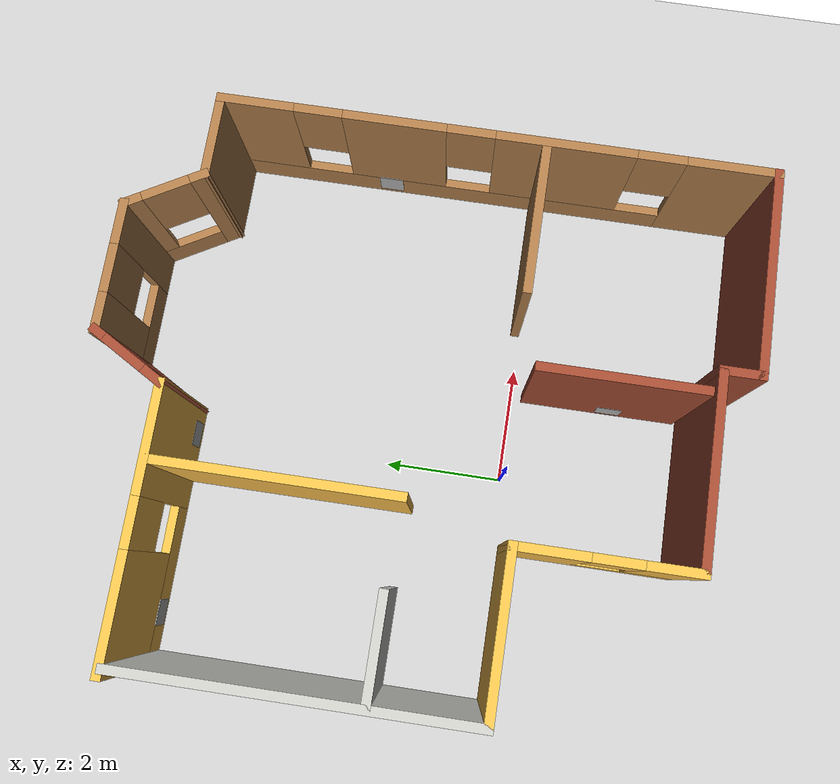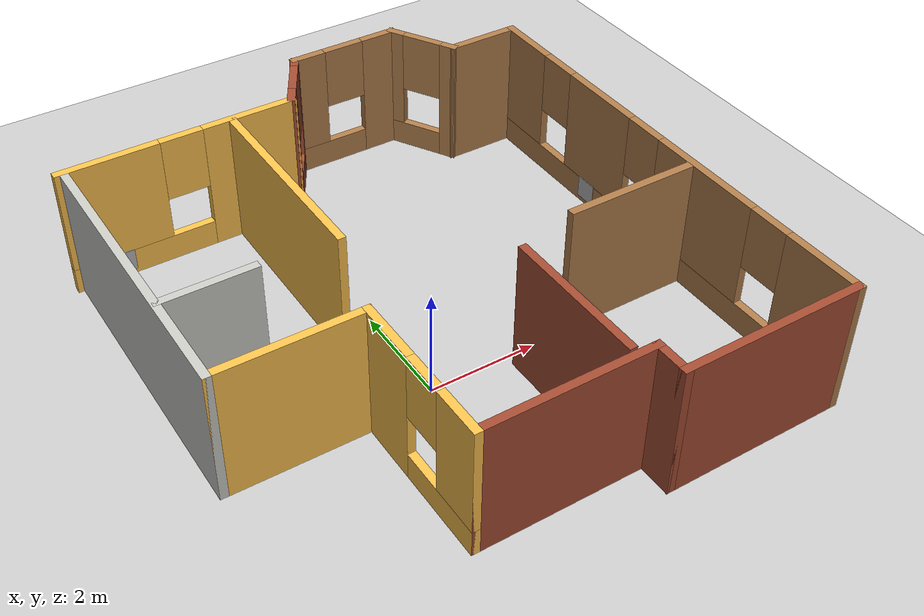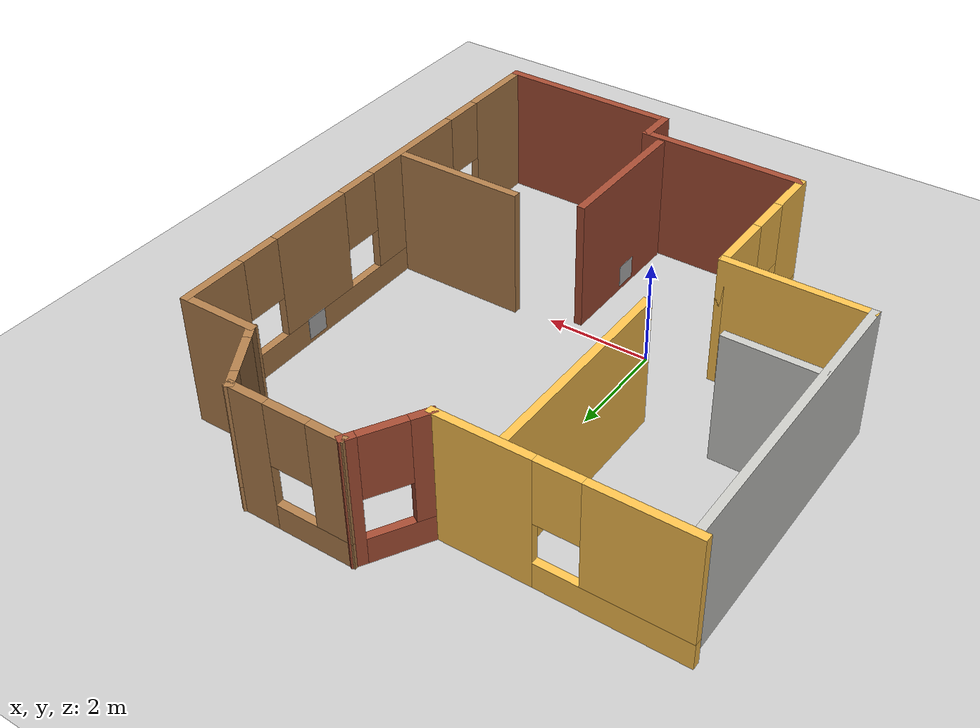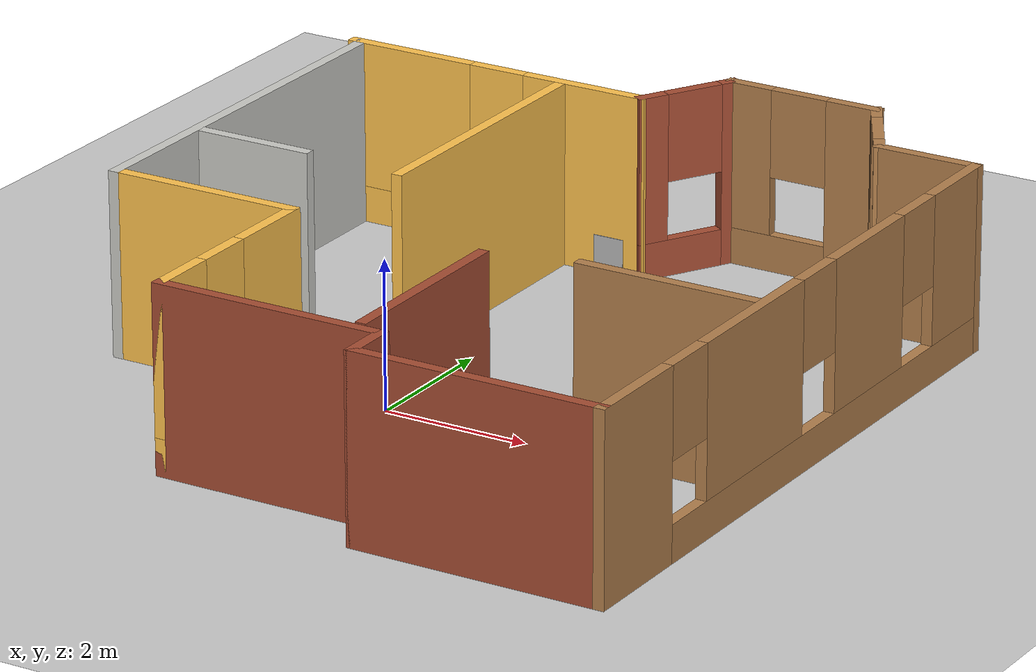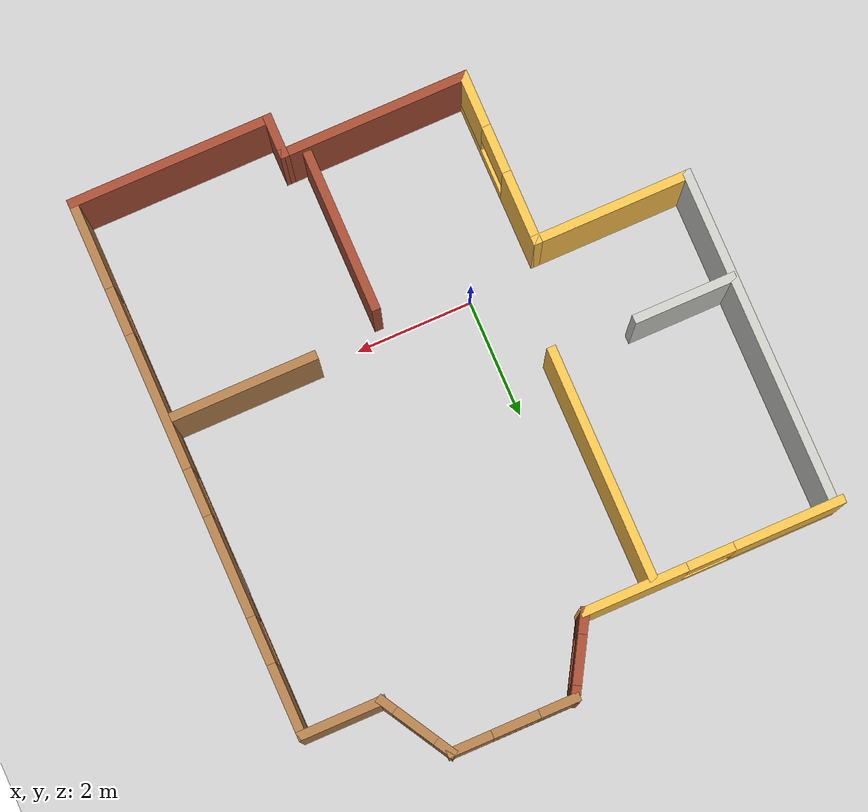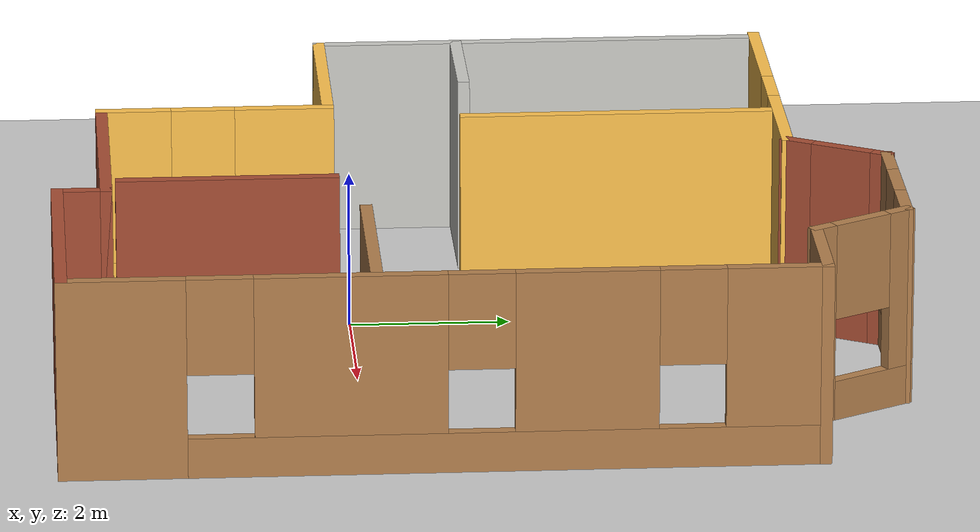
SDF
<sdf version="1.6">
 <world name="default">
  <model name="ground_plane">
   <static>1</static>
   <link name="link">
    <collision name="collision">
     <geometry><plane><normal>0 0 1</normal><size>100 100</size></plane></geometry>
     <surface><friction><ode><mu>100</mu><mu2>50</mu2></ode></friction></surface>
    </collision>
    <visual name="visual">
     <cast_shadows>0</cast_shadows>
     <geometry><plane><normal>0 0 1</normal><size>100 100</size></plane></geometry>
     <material>
      <script><uri>file://media/materials/scripts/gazebo.material</uri><name>Gazebo/Grey</name></script>
     </material>
    </visual>
   </link>
  </model>
  <light name="sun" type="directional">
   <pose>0 0 10 0 -0 0</pose>
   <diffuse>0.8 0.8 0.8 1</diffuse>
   <specular>0.1 0.1 0.1 1</specular>
   <attenuation>
    <range>1000</range>
    <constant>0.9</constant>
    <linear>0.01</linear>
    <quadratic>0.001</quadratic>
   </attenuation>
   <direction>-0.5 0.5 -1</direction>
  </light>
  <model name="tag1">
   <pose>-5.3e-05 5.37455 0.3 3.14159 1.57079 -1.57079</pose>
   <static>1</static>
   <link name="tag1_link">
    <visual name="tag1_visual">
     <geometry><mesh><uri>file://tag1.dae</uri><scale>1 1 1</scale></mesh></geometry>
    </visual>
   </link>
  </model>
  <model name="tag2">
   <pose>1.47256 -1.72229 0.3 1.57319 1.57079 -1.57319</pose>
   <static>1</static>
   <link name="tag2_link">
    <visual name="tag2_visual">
     <geometry><mesh><uri>file://tag2.dae</uri><scale>1 1 1</scale></mesh></geometry>
    </visual>
   </link>
  </model>
  <model name="tag3">
   <pose>-3.08465 5.36498 0.3 3.14159 1.57079 -1.57079</pose>
   <static>1</static>
   <link name="tag3_link">
    <visual name="tag3_visual">
     <geometry><mesh><uri>file://tag3.dae</uri><scale>1 1 1</scale></mesh></geometry>
    </visual>
   </link>
  </model>
  <model name="tag4">
   <pose>5.17016 2.73011 0.3 -1.57072 1.57079 -1.57087</pose>
   <static>1</static>
   <link name="tag4_link">
    <visual name="tag4_visual">
     <geometry><mesh><uri>file://tag4.dae</uri><scale>1 1 1</scale></mesh></geometry>
    </visual>
   </link>
  </model>
  <gravity>0 0 -9.8</gravity>
  <magnetic_field>6e-06 2.3e-05 -4.2e-05</magnetic_field>
  <atmosphere type="adiabatic"/>
  <physics name="default_physics" default="0" type="ode">
   <max_step_size>0.001</max_step_size>
   <real_time_factor>1</real_time_factor>
   <real_time_update_rate>1000</real_time_update_rate>
  </physics>
  <scene><ambient>0.4 0.4 0.4 1</ambient><background>0.7 0.7 0.7 1</background><shadows>1</shadows></scene>
  <spherical_coordinates>
   <surface_model>EARTH_WGS84</surface_model>
   <latitude_deg>0</latitude_deg>
   <longitude_deg>0</longitude_deg>
   <elevation>0</elevation>
   <heading_deg>0</heading_deg>
  </spherical_coordinates>
  <model name="template_0">
   <pose>0.66827 1.49349 0 0 -0 0</pose>
   <link name="Wall_0">
    <collision name="Wall_0_Collision">
     <geometry><box><size>5.75 0.15 2.5</size></box></geometry>
     <pose>0 0 1.25 0 -0 0</pose>
    </collision>
    <visual name="Wall_0_Visual">
     <pose>0 0 1.25 0 -0 0</pose>
     <geometry><box><size>5.75 0.15 2.5</size></box></geometry>
     <material>
      <script><uri>file://media/materials/scripts/gazebo.material</uri><name>Gazebo/CeilingTiled</name></script>
      <ambient>1 1 1 1</ambient>
     </material>
    </visual>
    <pose>-4.475 1.10171 0 0 0 -1.5708</pose>
   </link>
   <link name="Wall_1">
    <collision name="Wall_1_Collision">
     <geometry><box><size>2.75 0.15 2.5</size></box></geometry>
     <pose>0 0 1.25 0 -0 0</pose>
    </collision>
    <visual name="Wall_1_Visual">
     <pose>0 0 1.25 0 -0 0</pose>
     <geometry><box><size>2.75 0.15 2.5</size></box></geometry>
     <material>
      <script><uri>file://media/materials/scripts/gazebo.material</uri><name>Gazebo/Grey</name></script>
      <ambient>1 0.764706 0.305882 1</ambient>
     </material>
    </visual>
    <pose>-3.175 -1.69829 0 0 -0 0</pose>
   </link>
   <link name="Wall_10">
    <pose>0.1125 4.53627 0 0 0 -2.0944</pose>
    <visual name="Wall_10_Visual_0">
     <pose>-0.614192 0 1.25 0 -0 0</pose>
     <geometry><box><size>0.271616 0.15 2.5</size></box></geometry>
     <material>
      <script><uri>file://media/materials/scripts/gazebo.material</uri><name>Gazebo/Bricks</name></script>
      <ambient>1 1 1 1</ambient>
     </material>
    </visual>
    <collision name="Wall_10_Collision_0">
     <geometry><box><size>0.271616 0.15 2.5</size></box></geometry>
     <pose>-0.614192 0 1.25 0 -0 0</pose>
    </collision>
    <visual name="Wall_10_Visual_1">
     <pose>0.135808 0 0.25 0 -0 0</pose>
     <geometry><box><size>1.22838 0.15 0.5</size></box></geometry>
     <material>
      <script><uri>file://media/materials/scripts/gazebo.material</uri><name>Gazebo/Bricks</name></script>
      <ambient>1 1 1 1</ambient>
     </material>
    </visual>
    <collision name="Wall_10_Collision_1">
     <geometry><box><size>1.22838 0.15 0.5</size></box></geometry>
     <pose>0.135808 0 0.25 0 -0 0</pose>
    </collision>
    <visual name="Wall_10_Visual_2">
     <pose>0.535808 0 1.5 0 -0 0</pose>
     <geometry><box><size>0.428384 0.15 2</size></box></geometry>
     <material>
      <script><uri>file://media/materials/scripts/gazebo.material</uri><name>Gazebo/Bricks</name></script>
      <ambient>1 1 1 1</ambient>
     </material>
    </visual>
    <collision name="Wall_10_Collision_2">
     <geometry><box><size>0.428384 0.15 2</size></box></geometry>
     <pose>0.535808 0 1.5 0 -0 0</pose>
    </collision>
    <visual name="Wall_10_Visual_3">
     <pose>-0.078384 0 1.9 0 -0 0</pose>
     <geometry><box><size>0.8 0.15 1.2</size></box></geometry>
     <material>
      <script><uri>file://media/materials/scripts/gazebo.material</uri><name>Gazebo/Bricks</name></script>
      <ambient>1 1 1 1</ambient>
     </material>
    </visual>
    <collision name="Wall_10_Collision_3">
     <geometry><box><size>0.8 0.15 1.2</size></box></geometry>
     <pose>-0.078384 0 1.9 0 -0 0</pose>
    </collision>
   </link>
   <link name="Wall_11">
    <pose>-2.4 3.95171 0 0 -0 3.14159</pose>
    <visual name="Wall_11_Visual_0">
     <pose>-1.33975 0 1.25 0 -0 0</pose>
     <geometry><box><size>1.8205 0.15 2.5</size></box></geometry>
     <material>
      <script><uri>file://media/materials/scripts/gazebo.material</uri><name>Gazebo/Grey</name></script>
      <ambient>1 0.764706 0.305882 1</ambient>
     </material>
    </visual>
    <collision name="Wall_11_Collision_0">
     <geometry><box><size>1.8205 0.15 2.5</size></box></geometry>
     <pose>-1.33975 0 1.25 0 -0 0</pose>
    </collision>
    <visual name="Wall_11_Visual_1">
     <pose>0.91025 0 0.25 0 -0 0</pose>
     <geometry><box><size>2.6795 0.15 0.5</size></box></geometry>
     <material>
      <script><uri>file://media/materials/scripts/gazebo.material</uri><name>Gazebo/Grey</name></script>
      <ambient>1 0.764706 0.305882 1</ambient>
     </material>
    </visual>
    <collision name="Wall_11_Collision_1">
     <geometry><box><size>2.6795 0.15 0.5</size></box></geometry>
     <pose>0.91025 0 0.25 0 -0 0</pose>
    </collision>
    <visual name="Wall_11_Visual_2">
     <pose>1.31025 0 1.5 0 -0 0</pose>
     <geometry><box><size>1.8795 0.15 2</size></box></geometry>
     <material>
      <script><uri>file://media/materials/scripts/gazebo.material</uri><name>Gazebo/Grey</name></script>
      <ambient>1 0.764706 0.305882 1</ambient>
     </material>
    </visual>
    <collision name="Wall_11_Collision_2">
     <geometry><box><size>1.8795 0.15 2</size></box></geometry>
     <pose>1.31025 0 1.5 0 -0 0</pose>
    </collision>
    <visual name="Wall_11_Visual_3">
     <pose>-0.0295 0 1.9 0 -0 0</pose>
     <geometry><box><size>0.8 0.15 1.2</size></box></geometry>
     <material>
      <script><uri>file://media/materials/scripts/gazebo.material</uri><name>Gazebo/Grey</name></script>
      <ambient>1 0.764706 0.305882 1</ambient>
     </material>
    </visual>
    <collision name="Wall_11_Collision_3">
     <geometry><box><size>0.8 0.15 1.2</size></box></geometry>
     <pose>-0.0295 0 1.9 0 -0 0</pose>
    </collision>
   </link>
   <link name="Wall_13">
    <collision name="Wall_13_Collision">
     <geometry><box><size>4 0.15 2.5</size></box></geometry>
     <pose>0 0 1.25 0 -0 0</pose>
    </collision>
    <visual name="Wall_13_Visual">
     <pose>0 0 1.25 0 -0 0</pose>
     <geometry><box><size>4 0.15 2.5</size></box></geometry>
     <material>
      <script><uri>file://media/materials/scripts/gazebo.material</uri><name>Gazebo/Grey</name></script>
      <ambient>1 0.764706 0.305882 1</ambient>
     </material>
    </visual>
    <pose>-1.4045 1.94221 0 0 0 -1.5708</pose>
   </link>
   <link name="Wall_15">
    <collision name="Wall_15_Collision">
     <geometry><box><size>1.75 0.15 2.5</size></box></geometry>
     <pose>0 0 1.25 0 -0 0</pose>
    </collision>
    <visual name="Wall_15_Visual">
     <pose>0 0 1.25 0 -0 0</pose>
     <geometry><box><size>1.75 0.15 2.5</size></box></geometry>
     <material>
      <script><uri>file://media/materials/scripts/gazebo.material</uri><name>Gazebo/CeilingTiled</name></script>
      <ambient>1 1 1 1</ambient>
     </material>
    </visual>
    <pose>-3.6405 0.072207 0 0 -0 0</pose>
   </link>
   <link name="Wall_17">
    <collision name="Wall_17_Collision">
     <geometry><box><size>2.75 0.15 2.5</size></box></geometry>
     <pose>0 0 1.25 0 -0 0</pose>
    </collision>
    <visual name="Wall_17_Visual">
     <pose>0 0 1.25 0 -0 0</pose>
     <geometry><box><size>2.75 0.15 2.5</size></box></geometry>
     <material>
      <script><uri>file://media/materials/scripts/gazebo.material</uri><name>Gazebo/Bricks</name></script>
      <ambient>1 1 1 1</ambient>
     </material>
    </visual>
    <pose>0.8725 -3.05629 0 0 0 -1.5708</pose>
   </link>
   <link name="Wall_19">
    <collision name="Wall_19_Collision">
     <geometry><box><size>2.5 0.15 2.5</size></box></geometry>
     <pose>0 0 1.25 0 -0 0</pose>
    </collision>
    <visual name="Wall_19_Visual">
     <pose>0 0 1.25 0 -0 0</pose>
     <geometry><box><size>2.5 0.15 2.5</size></box></geometry>
     <material>
      <script><uri>file://media/materials/scripts/gazebo.material</uri><name>Gazebo/Wood</name></script>
      <ambient>1 1 1 1</ambient>
     </material>
    </visual>
    <pose>3.255 -1.41129 0 0 -0 0</pose>
   </link>
   <link name="Wall_2">
    <pose>-1.875 -3.12329 0 0 0 -1.5708</pose>
    <visual name="Wall_2_Visual_0">
     <pose>-0.8745 0 1.25 0 -0 0</pose>
     <geometry><box><size>1.251 0.15 2.5</size></box></geometry>
     <material>
      <script><uri>file://media/materials/scripts/gazebo.material</uri><name>Gazebo/Grey</name></script>
      <ambient>1 0.764706 0.305882 1</ambient>
     </material>
    </visual>
    <collision name="Wall_2_Collision_0">
     <geometry><box><size>1.251 0.15 2.5</size></box></geometry>
     <pose>-0.8745 0 1.25 0 -0 0</pose>
    </collision>
    <visual name="Wall_2_Visual_1">
     <pose>0.6255 0 0.25 0 -0 0</pose>
     <geometry><box><size>1.749 0.15 0.5</size></box></geometry>
     <material>
      <script><uri>file://media/materials/scripts/gazebo.material</uri><name>Gazebo/Grey</name></script>
      <ambient>1 0.764706 0.305882 1</ambient>
     </material>
    </visual>
    <collision name="Wall_2_Collision_1">
     <geometry><box><size>1.749 0.15 0.5</size></box></geometry>
     <pose>0.6255 0 0.25 0 -0 0</pose>
    </collision>
    <visual name="Wall_2_Visual_2">
     <pose>1.0255 0 1.5 0 -0 0</pose>
     <geometry><box><size>0.949 0.15 2</size></box></geometry>
     <material>
      <script><uri>file://media/materials/scripts/gazebo.material</uri><name>Gazebo/Grey</name></script>
      <ambient>1 0.764706 0.305882 1</ambient>
     </material>
    </visual>
    <collision name="Wall_2_Collision_2">
     <geometry><box><size>0.949 0.15 2</size></box></geometry>
     <pose>1.0255 0 1.5 0 -0 0</pose>
    </collision>
    <visual name="Wall_2_Visual_3">
     <pose>0.151 0 1.9 0 -0 0</pose>
     <geometry><box><size>0.8 0.15 1.2</size></box></geometry>
     <material>
      <script><uri>file://media/materials/scripts/gazebo.material</uri><name>Gazebo/Grey</name></script>
      <ambient>1 0.764706 0.305882 1</ambient>
     </material>
    </visual>
    <collision name="Wall_2_Collision_3">
     <geometry><box><size>0.8 0.15 1.2</size></box></geometry>
     <pose>0.151 0 1.9 0 -0 0</pose>
    </collision>
   </link>
   <link name="Wall_3">
    <collision name="Wall_3_Collision">
     <geometry><box><size>3.25 0.15 2.5</size></box></geometry>
     <pose>0 0 1.25 0 -0 0</pose>
    </collision>
    <visual name="Wall_3_Visual">
     <pose>0 0 1.25 0 -0 0</pose>
     <geometry><box><size>3.25 0.15 2.5</size></box></geometry>
     <material>
      <script><uri>file://media/materials/scripts/gazebo.material</uri><name>Gazebo/Bricks</name></script>
      <ambient>1 1 1 1</ambient>
     </material>
    </visual>
    <pose>-0.325 -4.54829 0 0 -0 0</pose>
   </link>
   <link name="Wall_4">
    <collision name="Wall_4_Collision">
     <geometry><box><size>0.75 0.15 2.5</size></box></geometry>
     <pose>0 0 1.25 0 -0 0</pose>
    </collision>
    <visual name="Wall_4_Visual">
     <pose>0 0 1.25 0 -0 0</pose>
     <geometry><box><size>0.75 0.15 2.5</size></box></geometry>
     <material>
      <script><uri>file://media/materials/scripts/gazebo.material</uri><name>Gazebo/Bricks</name></script>
      <ambient>1 1 1 1</ambient>
     </material>
    </visual>
    <pose>1.225 -4.84829 0 0 0 -1.5708</pose>
   </link>
   <link name="Wall_5">
    <collision name="Wall_5_Collision">
     <geometry><box><size>3.5 0.15 2.5</size></box></geometry>
     <pose>0 0 1.25 0 -0 0</pose>
    </collision>
    <visual name="Wall_5_Visual">
     <pose>0 0 1.25 0 -0 0</pose>
     <geometry><box><size>3.5 0.15 2.5</size></box></geometry>
     <material>
      <script><uri>file://media/materials/scripts/gazebo.material</uri><name>Gazebo/Bricks</name></script>
      <ambient>1 1 1 1</ambient>
     </material>
    </visual>
    <pose>2.9 -5.14829 0 0 -0 0</pose>
   </link>
   <link name="Wall_6">
    <pose>4.575 -0.598293 0 0 -0 1.5708</pose>
    <visual name="Wall_6_Visual_0">
     <pose>-3.8505 0 1.25 0 -0 0</pose>
     <geometry><box><size>1.549 0.15 2.5</size></box></geometry>
     <material>
      <script><uri>file://media/materials/scripts/gazebo.material</uri><name>Gazebo/Wood</name></script>
      <ambient>1 1 1 1</ambient>
     </material>
    </visual>
    <collision name="Wall_6_Collision_0">
     <geometry><box><size>1.549 0.15 2.5</size></box></geometry>
     <pose>-3.8505 0 1.25 0 -0 0</pose>
    </collision>
    <visual name="Wall_6_Visual_1">
     <pose>0.7745 0 0.25 0 -0 0</pose>
     <geometry><box><size>7.701 0.15 0.5</size></box></geometry>
     <material>
      <script><uri>file://media/materials/scripts/gazebo.material</uri><name>Gazebo/Wood</name></script>
      <ambient>1 1 1 1</ambient>
     </material>
    </visual>
    <collision name="Wall_6_Collision_1">
     <geometry><box><size>7.701 0.15 0.5</size></box></geometry>
     <pose>0.7745 0 0.25 0 -0 0</pose>
    </collision>
    <visual name="Wall_6_Visual_2">
     <pose>-1.1235 0 1.5 0 -0 0</pose>
     <geometry><box><size>2.305 0.15 2</size></box></geometry>
     <material>
      <script><uri>file://media/materials/scripts/gazebo.material</uri><name>Gazebo/Wood</name></script>
      <ambient>1 1 1 1</ambient>
     </material>
    </visual>
    <collision name="Wall_6_Collision_2">
     <geometry><box><size>2.305 0.15 2</size></box></geometry>
     <pose>-1.1235 0 1.5 0 -0 0</pose>
    </collision>
    <visual name="Wall_6_Visual_3">
     <pose>1.68825 0 1.5 0 -0 0</pose>
     <geometry><box><size>1.7185 0.15 2</size></box></geometry>
     <material>
      <script><uri>file://media/materials/scripts/gazebo.material</uri><name>Gazebo/Wood</name></script>
      <ambient>1 1 1 1</ambient>
     </material>
    </visual>
    <collision name="Wall_6_Collision_3">
     <geometry><box><size>1.7185 0.15 2</size></box></geometry>
     <pose>1.68825 0 1.5 0 -0 0</pose>
    </collision>
    <visual name="Wall_6_Visual_4">
     <pose>3.98625 0 1.5 0 -0 0</pose>
     <geometry><box><size>1.2775 0.15 2</size></box></geometry>
     <material>
      <script><uri>file://media/materials/scripts/gazebo.material</uri><name>Gazebo/Wood</name></script>
      <ambient>1 1 1 1</ambient>
     </material>
    </visual>
    <collision name="Wall_6_Collision_4">
     <geometry><box><size>1.2775 0.15 2</size></box></geometry>
     <pose>3.98625 0 1.5 0 -0 0</pose>
    </collision>
    <visual name="Wall_6_Visual_5">
     <pose>-2.676 0 1.9 0 -0 0</pose>
     <geometry><box><size>0.8 0.15 1.2</size></box></geometry>
     <material>
      <script><uri>file://media/materials/scripts/gazebo.material</uri><name>Gazebo/Wood</name></script>
      <ambient>1 1 1 1</ambient>
     </material>
    </visual>
    <collision name="Wall_6_Collision_5">
     <geometry><box><size>0.8 0.15 1.2</size></box></geometry>
     <pose>-2.676 0 1.9 0 -0 0</pose>
    </collision>
    <visual name="Wall_6_Visual_6">
     <pose>0.429 0 1.9 0 -0 0</pose>
     <geometry><box><size>0.8 0.15 1.2</size></box></geometry>
     <material>
      <script><uri>file://media/materials/scripts/gazebo.material</uri><name>Gazebo/Wood</name></script>
      <ambient>1 1 1 1</ambient>
     </material>
    </visual>
    <collision name="Wall_6_Collision_6">
     <geometry><box><size>0.8 0.15 1.2</size></box></geometry>
     <pose>0.429 0 1.9 0 -0 0</pose>
    </collision>
    <visual name="Wall_6_Visual_7">
     <pose>2.9475 0 1.9 0 -0 0</pose>
     <geometry><box><size>0.8 0.15 1.2</size></box></geometry>
     <material>
      <script><uri>file://media/materials/scripts/gazebo.material</uri><name>Gazebo/Wood</name></script>
      <ambient>1 1 1 1</ambient>
     </material>
    </visual>
    <collision name="Wall_6_Collision_7">
     <geometry><box><size>0.8 0.15 1.2</size></box></geometry>
     <pose>2.9475 0 1.9 0 -0 0</pose>
    </collision>
   </link>
   <link name="Wall_7">
    <collision name="Wall_7_Collision">
     <geometry><box><size>1.5 0.15 2.5</size></box></geometry>
     <pose>0 0 1.25 0 -0 0</pose>
    </collision>
    <visual name="Wall_7_Visual">
     <pose>0 0 1.25 0 -0 0</pose>
     <geometry><box><size>1.5 0.15 2.5</size></box></geometry>
     <material>
      <script><uri>file://media/materials/scripts/gazebo.material</uri><name>Gazebo/Wood</name></script>
      <ambient>1 1 1 1</ambient>
     </material>
    </visual>
    <pose>3.9 3.95171 0 0 -0 3.14159</pose>
   </link>
   <link name="Wall_8">
    <pose>2.8875 4.53627 0 0 -0 2.0944</pose>
    <visual name="Wall_8_Visual_0">
     <pose>-0.584308 0 1.25 0 -0 0</pose>
     <geometry><box><size>0.331384 0.15 2.5</size></box></geometry>
     <material>
      <script><uri>file://media/materials/scripts/gazebo.material</uri><name>Gazebo/Wood</name></script>
      <ambient>1 1 1 1</ambient>
     </material>
    </visual>
    <collision name="Wall_8_Collision_0">
     <geometry><box><size>0.331384 0.15 2.5</size></box></geometry>
     <pose>-0.584308 0 1.25 0 -0 0</pose>
    </collision>
    <visual name="Wall_8_Visual_1">
     <pose>0.165692 0 0.25 0 -0 0</pose>
     <geometry><box><size>1.16862 0.15 0.5</size></box></geometry>
     <material>
      <script><uri>file://media/materials/scripts/gazebo.material</uri><name>Gazebo/Wood</name></script>
      <ambient>1 1 1 1</ambient>
     </material>
    </visual>
    <collision name="Wall_8_Collision_1">
     <geometry><box><size>1.16862 0.15 0.5</size></box></geometry>
     <pose>0.165692 0 0.25 0 -0 0</pose>
    </collision>
    <visual name="Wall_8_Visual_2">
     <pose>0.565692 0 1.5 0 -0 0</pose>
     <geometry><box><size>0.368616 0.15 2</size></box></geometry>
     <material>
      <script><uri>file://media/materials/scripts/gazebo.material</uri><name>Gazebo/Wood</name></script>
      <ambient>1 1 1 1</ambient>
     </material>
    </visual>
    <collision name="Wall_8_Collision_2">
     <geometry><box><size>0.368616 0.15 2</size></box></geometry>
     <pose>0.565692 0 1.5 0 -0 0</pose>
    </collision>
    <visual name="Wall_8_Visual_3">
     <pose>-0.018616 0 1.9 0 -0 0</pose>
     <geometry><box><size>0.8 0.15 1.2</size></box></geometry>
     <material>
      <script><uri>file://media/materials/scripts/gazebo.material</uri><name>Gazebo/Wood</name></script>
      <ambient>1 1 1 1</ambient>
     </material>
    </visual>
    <collision name="Wall_8_Collision_3">
     <geometry><box><size>0.8 0.15 1.2</size></box></geometry>
     <pose>-0.018616 0 1.9 0 -0 0</pose>
    </collision>
   </link>
   <link name="Wall_9">
    <pose>1.5 5.12084 0 0 -0 3.14159</pose>
    <visual name="Wall_9_Visual_0">
     <pose>-0.742 0 1.25 0 -0 0</pose>
     <geometry><box><size>0.766 0.15 2.5</size></box></geometry>
     <material>
      <script><uri>file://media/materials/scripts/gazebo.material</uri><name>Gazebo/Wood</name></script>
      <ambient>1 1 1 1</ambient>
     </material>
    </visual>
    <collision name="Wall_9_Collision_0">
     <geometry><box><size>0.766 0.15 2.5</size></box></geometry>
     <pose>-0.742 0 1.25 0 -0 0</pose>
    </collision>
    <visual name="Wall_9_Visual_1">
     <pose>0.383 0 0.25 0 -0 0</pose>
     <geometry><box><size>1.484 0.15 0.5</size></box></geometry>
     <material>
      <script><uri>file://media/materials/scripts/gazebo.material</uri><name>Gazebo/Wood</name></script>
      <ambient>1 1 1 1</ambient>
     </material>
    </visual>
    <collision name="Wall_9_Collision_1">
     <geometry><box><size>1.484 0.15 0.5</size></box></geometry>
     <pose>0.383 0 0.25 0 -0 0</pose>
    </collision>
    <visual name="Wall_9_Visual_2">
     <pose>0.783 0 1.5 0 -0 0</pose>
     <geometry><box><size>0.684 0.15 2</size></box></geometry>
     <material>
      <script><uri>file://media/materials/scripts/gazebo.material</uri><name>Gazebo/Wood</name></script>
      <ambient>1 1 1 1</ambient>
     </material>
    </visual>
    <collision name="Wall_9_Collision_2">
     <geometry><box><size>0.684 0.15 2</size></box></geometry>
     <pose>0.783 0 1.5 0 -0 0</pose>
    </collision>
    <visual name="Wall_9_Visual_3">
     <pose>0.041 0 1.9 0 -0 0</pose>
     <geometry><box><size>0.8 0.15 1.2</size></box></geometry>
     <material>
      <script><uri>file://media/materials/scripts/gazebo.material</uri><name>Gazebo/Wood</name></script>
      <ambient>1 1 1 1</ambient>
     </material>
    </visual>
    <collision name="Wall_9_Collision_3">
     <geometry><box><size>0.8 0.15 1.2</size></box></geometry>
     <pose>0.041 0 1.9 0 -0 0</pose>
    </collision>
   </link>
   <static>1</static>
  </model>
  <light name="user_point_light_0" type="point">
   <pose>0.258591 0.141641 1 0 -0 0</pose>
   <diffuse>0.5 0.5 0.5 1</diffuse>
   <specular>0.1 0.1 0.1 1</specular>
   <attenuation>
    <range>20</range>
    <constant>0.5</constant>
    <linear>0.01</linear>
    <quadratic>0.001</quadratic>
   </attenuation>
   <cast_shadows>0</cast_shadows>
   <direction>0 0 -1</direction>
  </light>
 </world>
</sdf>
